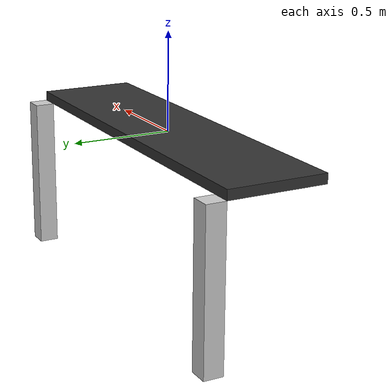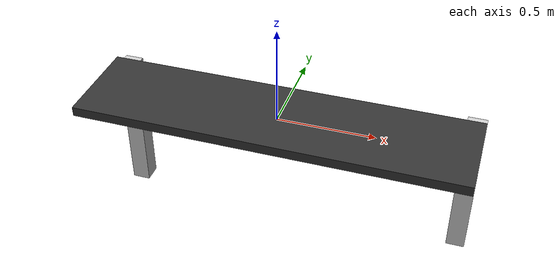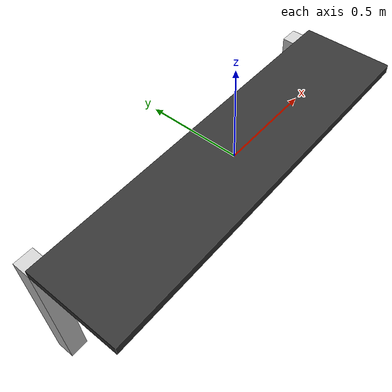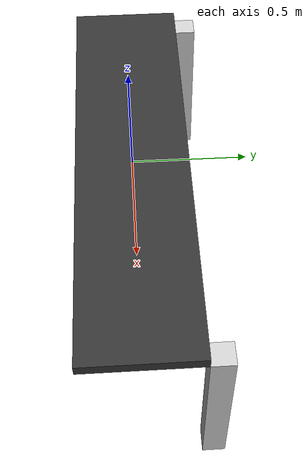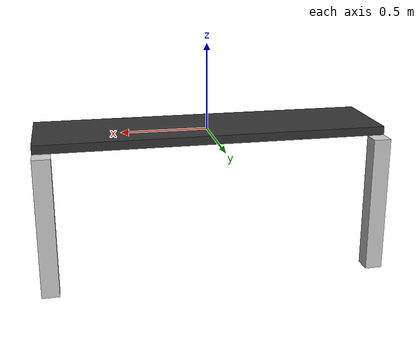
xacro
<?xml version="1.0"?>

<robot xmlns:xacro="http://www.ros.org/wiki/xacro" name="conveyor_belt">

    <!-- Conveyor Belt Properties -->
    <xacro:property name="belt_length" value="2.0"/>
    <xacro:property name="belt_width" value="0.5"/>
    <xacro:property name="belt_height" value="0.05"/>
    <xacro:property name="belt_speed" value="0.1"/>

    <!-- Support Structure Properties -->
    <xacro:property name="support_height" value="0.8"/>
    <xacro:property name="support_width" value="0.1"/>

    <!-- Conveyor Belt Base -->
    <link name="conveyor_base">
        <visual>
            <origin xyz="0 0 0" rpy="0 0 0"/>
            <geometry>
                <box size="${belt_length} ${belt_width} ${belt_height}"/>
            </geometry>
            <material name="belt_material">
                <color rgba="0.2 0.2 0.2 1.0"/>
            </material>
        </visual>
        <collision>
            <origin xyz="0 0 0" rpy="0 0 0"/>
            <geometry>
                <box size="${belt_length} ${belt_width} ${belt_height}"/>
            </geometry>
        </collision>
        <inertial>
            <origin xyz="0 0 0" rpy="0 0 0"/>
            <mass value="50.0"/>
            <inertia ixx="4.17" ixy="0" ixz="0" iyy="16.67" iyz="0" izz="20.83"/>
        </inertial>
    </link>

    <!-- Support Structure Left -->
    <link name="support_left">
        <visual>
            <origin xyz="0 0 0" rpy="0 0 0"/>
            <geometry>
                <box size="${support_width} ${support_width} ${support_height}"/>
            </geometry>
            <material name="support_material">
                <color rgba="0.8 0.8 0.8 1.0"/>
            </material>
        </visual>
        <collision>
            <origin xyz="0 0 0" rpy="0 0 0"/>
            <geometry>
                <box size="${support_width} ${support_width} ${support_height}"/>
            </geometry>
        </collision>
        <inertial>
            <origin xyz="0 0 0" rpy="0 0 0"/>
            <mass value="10.0"/>
            <inertia ixx="0.53" ixy="0" ixz="0" iyy="0.53" iyz="0" izz="0.017"/>
        </inertial>
    </link>

    <!-- Support Structure Right -->
    <link name="support_right">
        <visual>
            <origin xyz="0 0 0" rpy="0 0 0"/>
            <geometry>
                <box size="${support_width} ${support_width} ${support_height}"/>
            </geometry>
            <material name="support_material">
                <color rgba="0.8 0.8 0.8 1.0"/>
            </material>
        </visual>
        <collision>
            <origin xyz="0 0 0" rpy="0 0 0"/>
            <geometry>
                <box size="${support_width} ${support_width} ${support_height}"/>
            </geometry>
        </collision>
        <inertial>
            <origin xyz="0 0 0" rpy="0 0 0"/>
            <mass value="10.0"/>
            <inertia ixx="0.53" ixy="0" ixz="0" iyy="0.53" iyz="0" izz="0.017"/>
        </inertial>
    </link>

    <!-- Joints -->
    <joint name="support_left_joint" type="fixed">
        <parent link="conveyor_base"/>
        <child link="support_left"/>
        <origin xyz="${-belt_length/2 + support_width/2} ${belt_width/2 + support_width/2} ${-support_height/2 - belt_height/2}" rpy="0 0 0"/>
    </joint>

    <joint name="support_right_joint" type="fixed">
        <parent link="conveyor_base"/>
        <child link="support_right"/>
        <origin xyz="${belt_length/2 - support_width/2} ${belt_width/2 + support_width/2} ${-support_height/2 - belt_height/2}" rpy="0 0 0"/>
    </joint>

    <!-- Gazebo Properties for Belt Movement -->
    <gazebo reference="conveyor_base">
        <material>Gazebo/DarkGrey</material>
        <mu1>0.8</mu1>
        <mu2>0.8</mu2>
        <kp>1000000.0</kp>
        <kd>100.0</kd>
        <minDepth>0.001</minDepth>
        <maxVel>1.0</maxVel>
        <fdir1>1 0 0</fdir1>
    </gazebo>

    <gazebo reference="support_left">
        <material>Gazebo/Grey</material>
    </gazebo>

    <gazebo reference="support_right">
        <material>Gazebo/Grey</material>
    </gazebo>

</robot>
